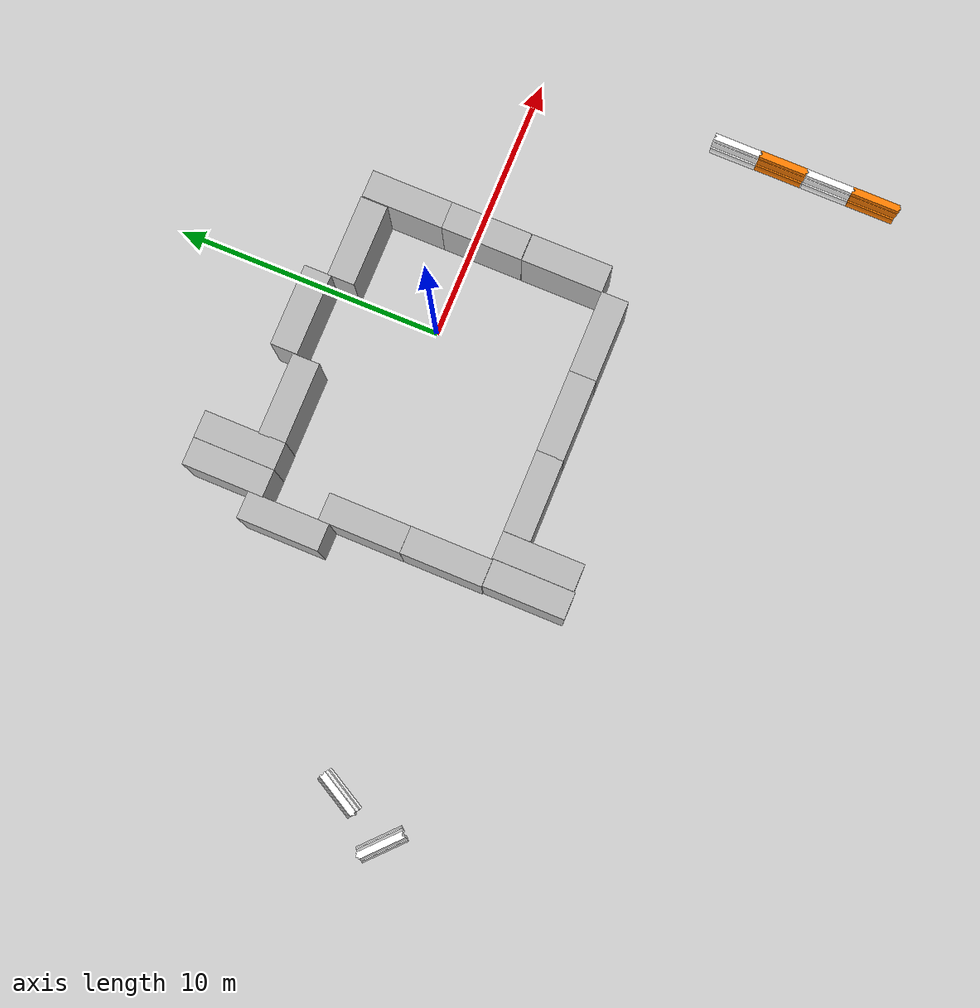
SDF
<sdf version="1.6">
 <world name="default">
  <light name="sun" type="directional">
   <pose>0 0 10 0 -0 0</pose>
   <diffuse>0.8 0.8 0.8 1</diffuse>
   <specular>0.2 0.2 0.2 1</specular>
   <attenuation>
    <range>1000</range>
    <constant>0.9</constant>
    <linear>0.01</linear>
    <quadratic>0.001</quadratic>
   </attenuation>
   <direction>-0.5 0.1 -0.9</direction>
  </light>
  <model name="ground_plane">
   <static>1</static>
   <link name="link">
    <collision name="collision">
     <geometry><plane><normal>0 0 1</normal><size>100 100</size></plane></geometry>
     <surface><friction><ode><mu>100</mu><mu2>50</mu2></ode></friction></surface>
    </collision>
    <visual name="visual">
     <cast_shadows>0</cast_shadows>
     <geometry><plane><normal>0 0 1</normal><size>100 100</size></plane></geometry>
     <material>
      <script><uri>file://media/materials/scripts/gazebo.material</uri><name>Gazebo/Grey</name></script>
     </material>
    </visual>
    <velocity_decay><linear>0</linear><angular>0</angular></velocity_decay>
   </link>
  </model>
  <physics name="default_physics" default="0" type="ode">
   <max_step_size>0.001</max_step_size>
   <real_time_factor>1</real_time_factor>
   <real_time_update_rate>1000</real_time_update_rate>
  </physics>
  <scene><ambient>0.4 0.4 0.4 1</ambient><background>0.7 0.7 0.7 1</background><shadows>1</shadows></scene>
  <spherical_coordinates>
   <surface_model>EARTH_WGS84</surface_model>
   <latitude_deg>0</latitude_deg>
   <longitude_deg>0</longitude_deg>
   <elevation>0</elevation>
   <heading_deg>0</heading_deg>
  </spherical_coordinates>
  <model name="drc_practice_white_jersey_barrier_0">
   <static>1</static>
   <link name="link">
    <visual name="visual">
     <geometry>
      <mesh><uri>model://drc_practice_white_jersey_barrier/meshes/jersey_barrier.dae</uri></mesh>
     </geometry>
    </visual>
    <collision name="collision">
     <geometry>
      <mesh><uri>model://drc_practice_white_jersey_barrier/meshes/jersey_barrier.dae</uri></mesh>
     </geometry>
    </collision>
    <velocity_decay><linear>0</linear><angular>0</angular></velocity_decay>
   </link>
   <pose>10.3176 -7.4365 0 0 -0 0</pose>
  </model>
  <model name="drc_practice_organge_jersey_barrier_2">
   <static>1</static>
   <link name="link">
    <visual name="visual">
     <geometry>
      <mesh><uri>model://drc_practice_orange_jersey_barrier/meshes/jersey_barrier.dae</uri></mesh>
     </geometry>
    </visual>
    <collision name="collision">
     <geometry>
      <mesh><uri>model://drc_practice_orange_jersey_barrier/meshes/jersey_barrier.dae</uri></mesh>
     </geometry>
    </collision>
    <velocity_decay><linear>0</linear><angular>0</angular></velocity_decay>
   </link>
   <pose>10.3218 -9.21435 0 0 -0 0</pose>
  </model>
  <model name="drc_practice_white_jersey_barrier_2">
   <static>1</static>
   <link name="link">
    <visual name="visual">
     <geometry>
      <mesh><uri>model://drc_practice_white_jersey_barrier/meshes/jersey_barrier.dae</uri></mesh>
     </geometry>
    </visual>
    <collision name="collision">
     <geometry>
      <mesh><uri>model://drc_practice_white_jersey_barrier/meshes/jersey_barrier.dae</uri></mesh>
     </geometry>
    </collision>
    <velocity_decay><linear>0</linear><angular>0</angular></velocity_decay>
   </link>
   <pose>10.3136 -11.0025 0 0 -0 0</pose>
  </model>
  <model name="drc_practice_organge_jersey_barrier_3">
   <static>1</static>
   <link name="link">
    <visual name="visual">
     <geometry>
      <mesh><uri>model://drc_practice_orange_jersey_barrier/meshes/jersey_barrier.dae</uri></mesh>
     </geometry>
    </visual>
    <collision name="collision">
     <geometry>
      <mesh><uri>model://drc_practice_orange_jersey_barrier/meshes/jersey_barrier.dae</uri></mesh>
     </geometry>
    </collision>
    <velocity_decay><linear>0</linear><angular>0</angular></velocity_decay>
   </link>
   <pose>10.3067 -12.7762 0 0 -0 0</pose>
  </model>
  <model name="drc_practice_white_jersey_barrier_3">
   <static>1</static>
   <link name="link">
    <visual name="visual">
     <geometry>
      <mesh><uri>model://drc_practice_white_jersey_barrier/meshes/jersey_barrier.dae</uri></mesh>
     </geometry>
    </visual>
    <collision name="collision">
     <geometry>
      <mesh><uri>model://drc_practice_white_jersey_barrier/meshes/jersey_barrier.dae</uri></mesh>
     </geometry>
    </collision>
    <velocity_decay><linear>0</linear><angular>0</angular></velocity_decay>
   </link>
   <pose>-16.2875 -3.11229 0 0 0 -0.509254</pose>
  </model>
  <model name="drc_practice_white_jersey_barrier_4">
   <static>1</static>
   <link name="link">
    <visual name="visual">
     <geometry>
      <mesh><uri>model://drc_practice_white_jersey_barrier/meshes/jersey_barrier.dae</uri></mesh>
     </geometry>
    </visual>
    <collision name="collision">
     <geometry>
      <mesh><uri>model://drc_practice_white_jersey_barrier/meshes/jersey_barrier.dae</uri></mesh>
     </geometry>
    </collision>
    <velocity_decay><linear>0</linear><angular>0</angular></velocity_decay>
   </link>
   <pose>-17.3228 -5.14571 0 0 0 -2.31969</pose>
  </model>
  <gravity>0 0 -9.8</gravity>
  <magnetic_field>6e-06 2.3e-05 -4.2e-05</magnetic_field>
  <atmosphere type="adiabatic"/>
  <audio><device>default</device></audio>
  <model name="brick_box_3x1x3">
   <static>1</static>
   <link name="chassis">
    <pose>0 0 1.5 0 -0 0</pose>
    <collision name="collision"><geometry><box><size>3 1 3</size></box></geometry></collision>
    <visual name="visual">
     <geometry><mesh><uri>model://brick_box_3x1x3/meshes/simple_box.dae</uri><scale>3 1 3</scale></mesh></geometry>
     <material>
      <script>
       <uri>model://brick_box_3x1x3/materials/scripts</uri>
       <uri>model://brick_box_3x1x3/materials/textures</uri>
       <name>BrickBox/Diffuse</name>
      </script>
     </material>
    </visual>
   </link>
   <pose>1.47866 3.48915 0 0 -0 0</pose>
  </model>
  <model name="brick_box_3x1x3_clone">
   <static>1</static>
   <link name="chassis">
    <pose>0 0 1.5 0 -0 0</pose>
    <collision name="collision"><geometry><box><size>3 1 3</size></box></geometry></collision>
    <visual name="visual">
     <geometry><mesh><uri>model://brick_box_3x1x3/meshes/simple_box.dae</uri><scale>3 1 3</scale></mesh></geometry>
     <material>
      <script>
       <uri>model://brick_box_3x1x3/materials/scripts</uri>
       <uri>model://brick_box_3x1x3/materials/textures</uri>
       <name>BrickBox/Diffuse</name>
      </script>
     </material>
    </visual>
   </link>
   <pose>-1.51547 4.34802 0 0 -0 0</pose>
  </model>
  <model name="brick_box_3x1x3_clone_0">
   <static>1</static>
   <link name="chassis">
    <pose>0 0 1.5 0 -0 0</pose>
    <collision name="collision"><geometry><box><size>3 1 3</size></box></geometry></collision>
    <visual name="visual">
     <geometry><mesh><uri>model://brick_box_3x1x3/meshes/simple_box.dae</uri><scale>3 1 3</scale></mesh></geometry>
     <material>
      <script>
       <uri>model://brick_box_3x1x3/materials/scripts</uri>
       <uri>model://brick_box_3x1x3/materials/textures</uri>
       <name>BrickBox/Diffuse</name>
      </script>
     </material>
    </visual>
   </link>
   <pose>-4.53418 3.49788 0 0 -0 0</pose>
  </model>
  <model name="brick_box_3x1x3_clone_1">
   <static>1</static>
   <link name="chassis">
    <pose>0 0 1.5 0 -0 0</pose>
    <collision name="collision"><geometry><box><size>3 1 3</size></box></geometry></collision>
    <visual name="visual">
     <geometry><mesh><uri>model://brick_box_3x1x3/meshes/simple_box.dae</uri><scale>3 1 3</scale></mesh></geometry>
     <material>
      <script>
       <uri>model://brick_box_3x1x3/materials/scripts</uri>
       <uri>model://brick_box_3x1x3/materials/textures</uri>
       <name>BrickBox/Diffuse</name>
      </script>
     </material>
    </visual>
   </link>
   <pose>1.50131 -5.53024 0 0 -0 0</pose>
  </model>
  <model name="brick_box_3x1x3_clone_2">
   <static>1</static>
   <link name="chassis">
    <pose>0 0 1.5 0 -0 0</pose>
    <collision name="collision"><geometry><box><size>3 1 3</size></box></geometry></collision>
    <visual name="visual">
     <geometry><mesh><uri>model://brick_box_3x1x3/meshes/simple_box.dae</uri><scale>3 1 3</scale></mesh></geometry>
     <material>
      <script>
       <uri>model://brick_box_3x1x3/materials/scripts</uri>
       <uri>model://brick_box_3x1x3/materials/textures</uri>
       <name>BrickBox/Diffuse</name>
      </script>
     </material>
    </visual>
   </link>
   <pose>-1.50097 -5.53024 0 0 -0 0</pose>
  </model>
  <model name="brick_box_3x1x3_clone_3">
   <static>1</static>
   <link name="chassis">
    <pose>0 0 1.5 0 -0 0</pose>
    <collision name="collision"><geometry><box><size>3 1 3</size></box></geometry></collision>
    <visual name="visual">
     <geometry><mesh><uri>model://brick_box_3x1x3/meshes/simple_box.dae</uri><scale>3 1 3</scale></mesh></geometry>
     <material>
      <script>
       <uri>model://brick_box_3x1x3/materials/scripts</uri>
       <uri>model://brick_box_3x1x3/materials/textures</uri>
       <name>BrickBox/Diffuse</name>
      </script>
     </material>
    </visual>
   </link>
   <pose>-4.48507 -5.53024 0 0 -0 0</pose>
  </model>
  <model name="brick_box_3x1x3_clone_4">
   <static>1</static>
   <link name="chassis">
    <pose>0 0 1.5 0 -0 0</pose>
    <collision name="collision"><geometry><box><size>3 1 3</size></box></geometry></collision>
    <visual name="visual">
     <geometry><mesh><uri>model://brick_box_3x1x3/meshes/simple_box.dae</uri><scale>3 1 3</scale></mesh></geometry>
     <material>
      <script>
       <uri>model://brick_box_3x1x3/materials/scripts</uri>
       <uri>model://brick_box_3x1x3/materials/textures</uri>
       <name>BrickBox/Diffuse</name>
      </script>
     </material>
    </visual>
   </link>
   <pose>3.50366 2.46535 0 0 0 -1.5743</pose>
  </model>
  <model name="brick_box_3x1x3_clone_4_clone">
   <static>1</static>
   <link name="chassis">
    <pose>0 0 1.5 0 -0 0</pose>
    <collision name="collision"><geometry><box><size>3 1 3</size></box></geometry></collision>
    <visual name="visual">
     <geometry><mesh><uri>model://brick_box_3x1x3/meshes/simple_box.dae</uri><scale>3 1 3</scale></mesh></geometry>
     <material>
      <script>
       <uri>model://brick_box_3x1x3/materials/scripts</uri>
       <uri>model://brick_box_3x1x3/materials/textures</uri>
       <name>BrickBox/Diffuse</name>
      </script>
     </material>
    </visual>
   </link>
   <pose>3.49349 -0.526518 0 0 0 -1.5743</pose>
  </model>
  <model name="brick_box_3x1x3_clone_4_clone_0">
   <static>1</static>
   <link name="chassis">
    <pose>0 0 1.5 0 -0 0</pose>
    <collision name="collision"><geometry><box><size>3 1 3</size></box></geometry></collision>
    <visual name="visual">
     <geometry><mesh><uri>model://brick_box_3x1x3/meshes/simple_box.dae</uri><scale>3 1 3</scale></mesh></geometry>
     <material>
      <script>
       <uri>model://brick_box_3x1x3/materials/scripts</uri>
       <uri>model://brick_box_3x1x3/materials/textures</uri>
       <name>BrickBox/Diffuse</name>
      </script>
     </material>
    </visual>
   </link>
   <pose>3.48126 -3.54601 0 0 0 -1.5743</pose>
  </model>
  <model name="brick_box_3x1x3_clone_4_clone_1">
   <static>1</static>
   <link name="chassis">
    <pose>0 0 1.5 0 -0 0</pose>
    <collision name="collision"><geometry><box><size>3 1 3</size></box></geometry></collision>
    <visual name="visual">
     <geometry><mesh><uri>model://brick_box_3x1x3/meshes/simple_box.dae</uri><scale>3 1 3</scale></mesh></geometry>
     <material>
      <script>
       <uri>model://brick_box_3x1x3/materials/scripts</uri>
       <uri>model://brick_box_3x1x3/materials/textures</uri>
       <name>BrickBox/Diffuse</name>
      </script>
     </material>
    </visual>
   </link>
   <pose>-6.5019 4.48428 0 0 0 -1.5743</pose>
  </model>
  <model name="brick_box_3x1x3_clone_4_clone_2">
   <static>1</static>
   <link name="chassis">
    <pose>0 0 1.5 0 -0 0</pose>
    <collision name="collision"><geometry><box><size>3 1 3</size></box></geometry></collision>
    <visual name="visual">
     <geometry><mesh><uri>model://brick_box_3x1x3/meshes/simple_box.dae</uri><scale>3 1 3</scale></mesh></geometry>
     <material>
      <script>
       <uri>model://brick_box_3x1x3/materials/scripts</uri>
       <uri>model://brick_box_3x1x3/materials/textures</uri>
       <name>BrickBox/Diffuse</name>
      </script>
     </material>
    </visual>
   </link>
   <pose>-6.49205 -6.52896 0 0 0 -1.5743</pose>
  </model>
  <model name="brick_box_3x1x3_clone_4_clone_3">
   <static>1</static>
   <link name="chassis">
    <pose>0 0 1.5 0 -0 0</pose>
    <collision name="collision"><geometry><box><size>3 1 3</size></box></geometry></collision>
    <visual name="visual">
     <geometry><mesh><uri>model://brick_box_3x1x3/meshes/simple_box.dae</uri><scale>3 1 3</scale></mesh></geometry>
     <material>
      <script>
       <uri>model://brick_box_3x1x3/materials/scripts</uri>
       <uri>model://brick_box_3x1x3/materials/textures</uri>
       <name>BrickBox/Diffuse</name>
      </script>
     </material>
    </visual>
   </link>
   <pose>-8.49825 2.02553 0 0 0 -1.5743</pose>
  </model>
  <model name="brick_box_3x1x3_clone_4_clone_4">
   <static>1</static>
   <link name="chassis">
    <pose>0 0 1.5 0 -0 0</pose>
    <collision name="collision"><geometry><box><size>3 1 3</size></box></geometry></collision>
    <visual name="visual">
     <geometry><mesh><uri>model://brick_box_3x1x3/meshes/simple_box.dae</uri><scale>3 1 3</scale></mesh></geometry>
     <material>
      <script>
       <uri>model://brick_box_3x1x3/materials/scripts</uri>
       <uri>model://brick_box_3x1x3/materials/textures</uri>
       <name>BrickBox/Diffuse</name>
      </script>
     </material>
    </visual>
   </link>
   <pose>-7.51232 -0.569999 0 0 0 -1.5743</pose>
  </model>
  <model name="brick_box_3x1x3_clone_4_clone_5">
   <static>1</static>
   <link name="chassis">
    <pose>0 0 1.5 0 -0 0</pose>
    <collision name="collision"><geometry><box><size>3 1 3</size></box></geometry></collision>
    <visual name="visual">
     <geometry><mesh><uri>model://brick_box_3x1x3/meshes/simple_box.dae</uri><scale>3 1 3</scale></mesh></geometry>
     <material>
      <script>
       <uri>model://brick_box_3x1x3/materials/scripts</uri>
       <uri>model://brick_box_3x1x3/materials/textures</uri>
       <name>BrickBox/Diffuse</name>
      </script>
     </material>
    </visual>
   </link>
   <pose>-7.51919 -3.57237 0 0 0 -1.5743</pose>
  </model>
  <model name="brick_box_3x1x3_clone_4_clone_6">
   <static>1</static>
   <link name="chassis">
    <pose>0 0 1.5 0 -0 0</pose>
    <collision name="collision"><geometry><box><size>3 1 3</size></box></geometry></collision>
    <visual name="visual">
     <geometry><mesh><uri>model://brick_box_3x1x3/meshes/simple_box.dae</uri><scale>3 1 3</scale></mesh></geometry>
     <material>
      <script>
       <uri>model://brick_box_3x1x3/materials/scripts</uri>
       <uri>model://brick_box_3x1x3/materials/textures</uri>
       <name>BrickBox/Diffuse</name>
      </script>
     </material>
    </visual>
   </link>
   <pose>-7.49663 -6.58052 0 0 0 -1.5743</pose>
  </model>
  <model name="brick_box_3x1x3_clone_4_clone_1_clone">
   <static>1</static>
   <link name="chassis">
    <pose>0 0 1.5 0 -0 0</pose>
    <collision name="collision"><geometry><box><size>3 1 3</size></box></geometry></collision>
    <visual name="visual">
     <geometry><mesh><uri>model://brick_box_3x1x3/meshes/simple_box.dae</uri><scale>3 1 3</scale></mesh></geometry>
     <material>
      <script>
       <uri>model://brick_box_3x1x3/materials/scripts</uri>
       <uri>model://brick_box_3x1x3/materials/textures</uri>
       <name>BrickBox/Diffuse</name>
      </script>
     </material>
    </visual>
   </link>
   <pose>-7.50355 4.48373 0 0 0 -1.5743</pose>
  </model>
 </world>
</sdf>
